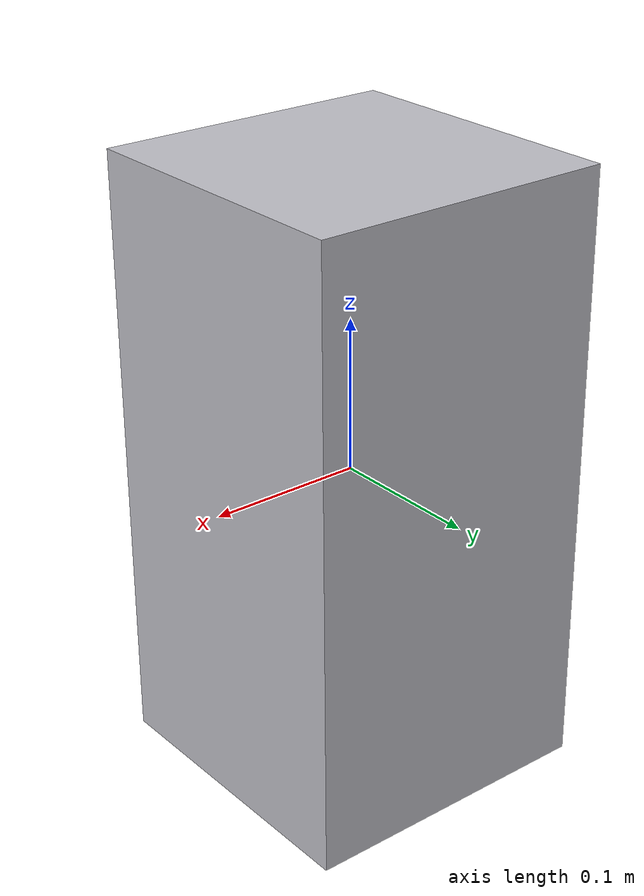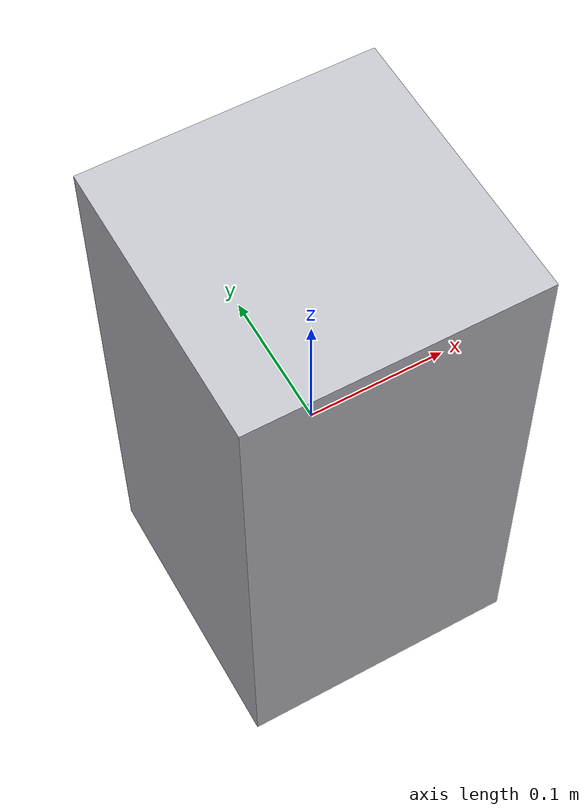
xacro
<?xml version="1.0" ?>
<robot name="trash" xmlns:xacro="http://www.ros.org/wiki/xacro">

  <link name="cube">
    <inertial>
      <origin rpy="0 0 0" xyz="0 0 0"/>
      <mass value="0.01"/>
      <inertia ixx="${(0.01*0.2**2)/6}" ixy="0.0" ixz="0" iyy="${(0.01*0.2**2)/6}" iyz="0" izz="${(0.01*0.2**2)/6}"/>
    </inertial>
    <visual>
      <origin rpy="0 0 0" xyz="0 0 0"/>
      <geometry>
        <box size="0.2 0.2 0.4"/>
      </geometry>
      <material name="silver_default"/>
    </visual>
    <collision>
      <origin rpy="0 0 0" xyz="0 0 0"/>
      <geometry>
        <box size="0.2 0.2 0.4"/>
      </geometry>
    </collision>
  </link>

  <gazebo reference="cube">
    <mu1>100000</mu1>
    <mu2>100000</mu2>
    <material>Gazebo/Blue</material>
  </gazebo>

</robot>
